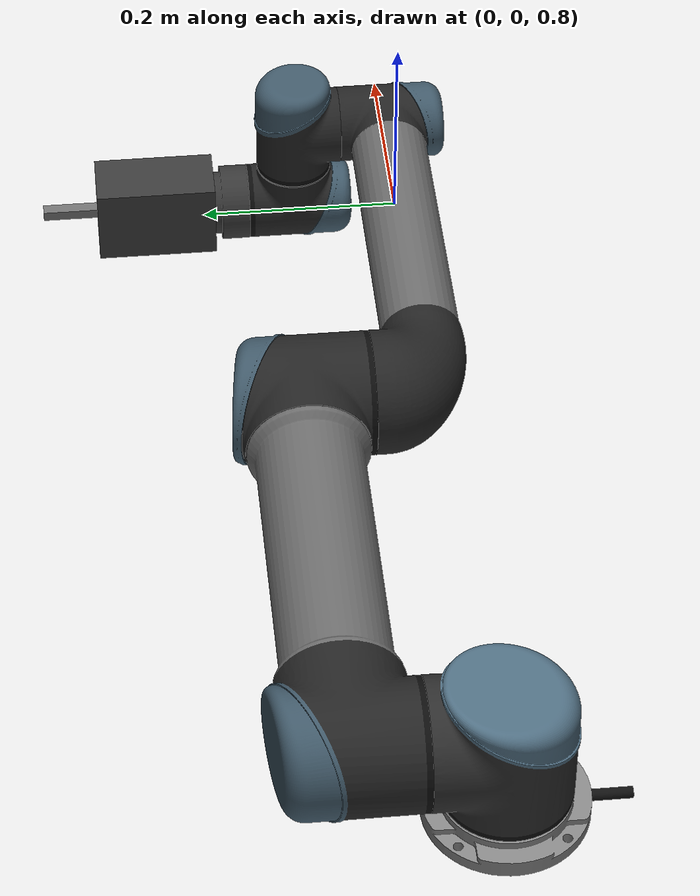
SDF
<sdf version='1.11'>
  <model name='ur5_rg2'>
    <joint name='base_joint' type='fixed'>
      <pose relative_to='__model__'>-0.84999999999999998 0 0.84999999999999998 0 0 0</pose>
      <parent>world</parent>
      <child>base_link</child>
    </joint>
    <link name='base_link'>
      <pose relative_to='base_joint'>0 0 0 0 0 0</pose>
      <inertial>
        <pose>0 0 0 0 0 0</pose>
        <mass>4</mass>
        <inertia>
          <ixx>0.0044333315599999999</ixx>
          <ixy>0</ixy>
          <ixz>0</ixz>
          <iyy>0.0044333315599999999</iyy>
          <iyz>0</iyz>
          <izz>0.0071999999999999998</izz>
        </inertia>
      </inertial>
      <collision name='base_link_inertia_collision'>
        <pose>0 0 0 0 0 -2.4492935982947059e-16</pose>
        <geometry>
          <mesh>
            <scale>1 1 1</scale>
            <uri>model://ur_description/meshes/ur5/collision/base.stl</uri>
          </mesh>
        </geometry>
      </collision>
      <visual name='base_link_inertia_visual'>
        <pose>0 0 0 0 0 -2.4492935982947059e-16</pose>
        <geometry>
          <mesh>
            <scale>1 1 1</scale>
            <uri>model://ur_description/meshes/ur5/visual/base.dae</uri>
          </mesh>
        </geometry>
      </visual>
    </link>
    <joint name='shoulder_pan_joint' type='revolute'>
      <pose relative_to='base_link'>0 0 0.089159000000000002 0 0 3.1415926535897931</pose>
      <parent>base_link</parent>
      <child>shoulder_link</child>
      <axis>
        <xyz>0 0 1</xyz>
        <limit>
          <lower>-6.2831853071795862</lower>
          <upper>6.2831853071795862</upper>
          <effort>150</effort>
          <velocity>3.1415926535897931</velocity>
        </limit>
        <dynamics>
          <damping>0</damping>
          <friction>0</friction>
          <spring_reference>0</spring_reference>
          <spring_stiffness>0</spring_stiffness>
        </dynamics>
      </axis>
    </joint>
    <link name='shoulder_link'>
      <pose relative_to='shoulder_pan_joint'>0 0 0 0 0 0</pose>
      <inertial>
        <pose>0 -0.0019300000000000001 -0.025610000000000001 0 0 0</pose>
        <mass>3.7000000000000002</mass>
        <inertia>
          <ixx>0.01497235833333333</ixx>
          <ixy>0</ixy>
          <ixz>0</ixz>
          <iyy>0.01497235833333333</iyy>
          <iyz>0</iyz>
          <izz>0.010406250000000001</izz>
        </inertia>
      </inertial>
      <collision name='shoulder_link_collision'>
        <pose>0 0 0 0 0 3.1415926535897931</pose>
        <geometry>
          <mesh>
            <scale>1 1 1</scale>
            <uri>model://ur_description/meshes/ur5/collision/shoulder.stl</uri>
          </mesh>
        </geometry>
      </collision>
      <visual name='shoulder_link_visual'>
        <pose>0 0 0 0 0 3.1415926535897931</pose>
        <geometry>
          <mesh>
            <scale>1 1 1</scale>
            <uri>model://ur_description/meshes/ur5/visual/shoulder.dae</uri>
          </mesh>
        </geometry>
      </visual>
    </link>
    <joint name='shoulder_lift_joint' type='revolute'>
      <pose relative_to='shoulder_link'>0 0 0 1.5707963270000003 0 0</pose>
      <parent>shoulder_link</parent>
      <child>upper_arm_link</child>
      <axis>
        <xyz>0 0 1</xyz>
        <initial_position>-1.5707963267948966</initial_position>
        <limit>
          <lower>-6.2831853071795862</lower>
          <upper>6.2831853071795862</upper>
          <effort>150</effort>
          <velocity>3.1415926535897931</velocity>
        </limit>
        <dynamics>
          <damping>0</damping>
          <friction>0</friction>
          <spring_reference>0</spring_reference>
          <spring_stiffness>0</spring_stiffness>
        </dynamics>
      </axis>
    </joint>
    <link name='upper_arm_link'>
      <pose relative_to='shoulder_lift_joint'>0 0 0 0 0 0</pose>
      <inertial>
        <pose>-0.21249999999999999 0 0.11336 0 1.5707963267948966 0</pose>
        <mass>8.3930000000000007</mass>
        <inertia>
          <ixx>0.13388583541666671</ixx>
          <ixy>0</ixy>
          <ixz>0</ixz>
          <iyy>0.13388583541666671</iyy>
          <iyz>0</iyz>
          <izz>0.0151074</izz>
        </inertia>
      </inertial>
      <collision name='upper_arm_link_collision'>
        <pose>0 0 0.13585 1.5707963267948959 5.5511151231257827e-17 -1.5707963267948959</pose>
        <geometry>
          <mesh>
            <scale>1 1 1</scale>
            <uri>model://ur_description/meshes/ur5/collision/upperarm.stl</uri>
          </mesh>
        </geometry>
      </collision>
      <visual name='upper_arm_link_visual'>
        <pose>0 0 0.13585 1.5707963267948959 5.5511151231257827e-17 -1.5707963267948959</pose>
        <geometry>
          <mesh>
            <scale>1 1 1</scale>
            <uri>model://ur_description/meshes/ur5/visual/upperarm.dae</uri>
          </mesh>
        </geometry>
      </visual>
    </link>
    <joint name='elbow_joint' type='revolute'>
      <pose relative_to='upper_arm_link'>-0.42499999999999999 0 0 0 0 0</pose>
      <parent>upper_arm_link</parent>
      <child>forearm_link</child>
      <axis>
        <xyz>0 0 1</xyz>
        <limit>
          <lower>-3.1415926535897931</lower>
          <upper>3.1415926535897931</upper>
          <effort>150</effort>
          <velocity>3.1415926535897931</velocity>
        </limit>
        <dynamics>
          <damping>0</damping>
          <friction>0</friction>
          <spring_reference>0</spring_reference>
          <spring_stiffness>0</spring_stiffness>
        </dynamics>
      </axis>
    </joint>
    <link name='forearm_link'>
      <pose relative_to='elbow_joint'>0 0 0 0 0 0</pose>
      <inertial>
        <pose>-0.24224999999999999 0 0.026499999999999999 0 1.5707963267948966 0</pose>
        <mass>2.3300000000000001</mass>
        <inertia>
          <ixx>0.031216803515624999</ixx>
          <ixy>0</ixy>
          <ixz>0</ixz>
          <iyy>0.031216803515624999</iyy>
          <iyz>0</iyz>
          <izz>0.0040949999999999997</izz>
        </inertia>
      </inertial>
      <collision name='forearm_link_collision'>
        <pose>0 0 0.016500000000000001 1.5707963267948959 5.5511151231257827e-17 -1.5707963267948959</pose>
        <geometry>
          <mesh>
            <scale>1 1 1</scale>
            <uri>model://ur_description/meshes/ur5/collision/forearm.stl</uri>
          </mesh>
        </geometry>
      </collision>
      <visual name='forearm_link_visual'>
        <pose>0 0 0.016500000000000001 1.5707963267948959 5.5511151231257827e-17 -1.5707963267948959</pose>
        <geometry>
          <mesh>
            <scale>1 1 1</scale>
            <uri>model://ur_description/meshes/ur5/visual/forearm.dae</uri>
          </mesh>
        </geometry>
      </visual>
    </link>
    <joint name='wrist_1_joint' type='revolute'>
      <pose relative_to='forearm_link'>-0.39224999999999999 0 0.10915 0 0 0</pose>
      <parent>forearm_link</parent>
      <child>wrist_1_link</child>
      <axis>
        <xyz>0 0 1</xyz>
        <initial_position>-1.5707963267948966</initial_position>
        <limit>
          <lower>-6.2831853071795862</lower>
          <upper>6.2831853071795862</upper>
          <effort>28</effort>
          <velocity>3.1415926535897931</velocity>
        </limit>
        <dynamics>
          <damping>0</damping>
          <friction>0</friction>
          <spring_reference>0</spring_reference>
          <spring_stiffness>0</spring_stiffness>
        </dynamics>
      </axis>
    </joint>
    <link name='wrist_1_link'>
      <pose relative_to='wrist_1_joint'>0 0 0 0 0 0</pose>
      <inertial>
        <pose>0 -0.01634 -0.0018 0 0 0</pose>
        <mass>1.2190000000000001</mass>
        <inertia>
          <ixx>0.0020138895833333331</ixx>
          <ixy>0</ixy>
          <ixz>0</ixz>
          <iyy>0.0020138895833333331</iyy>
          <iyz>0</iyz>
          <izz>0.0021941999999999999</izz>
        </inertia>
      </inertial>
      <collision name='wrist_1_link_collision'>
        <pose>0 0 -0.092999999999999999 1.5707963267948959 0 0</pose>
        <geometry>
          <mesh>
            <scale>1 1 1</scale>
            <uri>model://ur_description/meshes/ur5/collision/wrist1.stl</uri>
          </mesh>
        </geometry>
      </collision>
      <visual name='wrist_1_link_visual'>
        <pose>0 0 -0.092999999999999999 1.5707963267948959 0 0</pose>
        <geometry>
          <mesh>
            <scale>1 1 1</scale>
            <uri>model://ur_description/meshes/ur5/visual/wrist1.dae</uri>
          </mesh>
        </geometry>
      </visual>
    </link>
    <joint name='wrist_2_joint' type='revolute'>
      <pose relative_to='wrist_1_link'>0 -0.094649999999999998 -1.941303950897609e-11 1.5707963270000003 0 0</pose>
      <parent>wrist_1_link</parent>
      <child>wrist_2_link</child>
      <axis>
        <xyz>0 0 1</xyz>
        <limit>
          <lower>-6.2831853071795862</lower>
          <upper>6.2831853071795862</upper>
          <effort>28</effort>
          <velocity>3.1415926535897931</velocity>
        </limit>
        <dynamics>
          <damping>0</damping>
          <friction>0</friction>
          <spring_reference>0</spring_reference>
          <spring_stiffness>0</spring_stiffness>
        </dynamics>
      </axis>
    </joint>
    <link name='wrist_2_link'>
      <pose relative_to='wrist_2_joint'>0 0 0 0 0 0</pose>
      <inertial>
        <pose>0 0.01634 -0.0018 0 0 0</pose>
        <mass>1.2190000000000001</mass>
        <inertia>
          <ixx>0.001831039583333333</ixx>
          <ixy>0</ixy>
          <ixz>0</ixz>
          <iyy>0.001831039583333333</iyy>
          <iyz>0</iyz>
          <izz>0.0021941999999999999</izz>
        </inertia>
      </inertial>
      <collision name='wrist_2_link_collision'>
        <pose>0 0 -0.095000000000000001 0 0 0</pose>
        <geometry>
          <mesh>
            <scale>1 1 1</scale>
            <uri>model://ur_description/meshes/ur5/collision/wrist2.stl</uri>
          </mesh>
        </geometry>
      </collision>
      <visual name='wrist_2_link_visual'>
        <pose>0 0 -0.095000000000000001 0 0 0</pose>
        <geometry>
          <mesh>
            <scale>1 1 1</scale>
            <uri>model://ur_description/meshes/ur5/visual/wrist2.dae</uri>
          </mesh>
        </geometry>
      </visual>
    </link>
    <joint name='wrist_3_joint' type='revolute'>
      <pose relative_to='wrist_2_link'>0 0.082299999999999998 -1.6880012166811751e-11 -1.5707963270000003 1.2246467991473527e-16 -1.224646799147353e-16</pose>
      <parent>wrist_2_link</parent>
      <child>wrist_3_link</child>
      <axis>
        <xyz>0 0 1</xyz>
        <limit>
          <lower>-6.2831853071795862</lower>
          <upper>6.2831853071795862</upper>
          <effort>28</effort>
          <velocity>3.1415926535897931</velocity>
        </limit>
        <dynamics>
          <damping>0</damping>
          <friction>0</friction>
          <spring_reference>0</spring_reference>
          <spring_stiffness>0</spring_stiffness>
        </dynamics>
      </axis>
    </joint>
    <link name='wrist_3_link'>
      <pose relative_to='wrist_3_joint'>0 0 0 0 0 0</pose>
      <inertial>
        <pose>-1.234042663852843e-17 9.6729550606242422e-18 0.043242338930623063 0 0 0</pose>
        <mass>0.67890000000000006</mass>
        <inertia>
          <ixx>0.0010070271348872461</ixx>
          <ixy>1.525729568457283e-35</ixy>
          <ixz>1.744229138490119e-19</ixz>
          <iyy>0.0010070271348872461</iyy>
          <iyz>-1.3672015211670341e-19</iyz>
          <izz>0.00043311718750000002</izz>
        </inertia>
      </inertial>
      <collision name='wrist_3_link_collision'>
        <pose>0 0 -0.081799999999999998 1.5707963267948959 0 0</pose>
        <geometry>
          <mesh>
            <scale>1 1 1</scale>
            <uri>model://ur_description/meshes/ur5/collision/wrist3.stl</uri>
          </mesh>
        </geometry>
      </collision>
      <collision name='wrist_3_link_fixed_joint_lump__rg2_base_link_collision_1'>
        <pose>-1.387778780781446e-17 0 0.059999999999999998 -2.4651903288156619e-32 -2.2204460492503131e-16 2.2204460492503131e-16</pose>
        <geometry>
          <box>
            <size>0.059999999999999998 0.080000000000000002 0.12</size>
          </box>
        </geometry>
      </collision>
      <visual name='wrist_3_link_visual'>
        <pose>0 0 -0.081799999999999998 1.5707963267948959 0 0</pose>
        <geometry>
          <mesh>
            <scale>1 1 1</scale>
            <uri>model://ur_description/meshes/ur5/visual/wrist3.dae</uri>
          </mesh>
        </geometry>
      </visual>
      <visual name='wrist_3_link_fixed_joint_lump__rg2_base_link_visual_1'>
        <pose>-1.387778780781446e-17 0 0.059999999999999998 -2.4651903288156619e-32 -2.2204460492503131e-16 2.2204460492503131e-16</pose>
        <geometry>
          <box>
            <size>0.059999999999999998 0.080000000000000002 0.12</size>
          </box>
        </geometry>
        <material>
          <diffuse>0.225000009 0.225000009 0.225000009 1</diffuse>
          <ambient>0.225000009 0.225000009 0.225000009 1</ambient>
        </material>
      </visual>
    </link>
    <joint name='rg2_finger_joint1' type='prismatic'>
      <pose relative_to='wrist_3_link'>-2.775557561562891e-17 0 0.12 -2.4651903288156619e-32 -2.2204460492503131e-16 2.2204460492503131e-16</pose>
      <parent>wrist_3_link</parent>
      <child>rg2_finger_link1</child>
      <axis>
        <xyz>0 1 0</xyz>
        <limit>
          <lower>0</lower>
          <upper>0.042500000000000003</upper>
          <effort>25</effort>
          <velocity>0.10000000000000001</velocity>
        </limit>
        <dynamics>
          <damping>0.5</damping>
          <friction>0.10000000000000001</friction>
          <spring_reference>0</spring_reference>
          <spring_stiffness>0</spring_stiffness>
        </dynamics>
      </axis>
    </joint>
    <link name='rg2_finger_link1'>
      <pose relative_to='rg2_finger_joint1'>0 0 0 0 0 0</pose>
      <inertial>
        <pose>0 0 0.0275 0 0 0</pose>
        <mass>0.040000000000000001</mass>
        <inertia>
          <ixx>2.0000000000000002e-05</ixx>
          <ixy>0</ixy>
          <ixz>0</ixz>
          <iyy>2.0000000000000002e-05</iyy>
          <iyz>0</iyz>
          <izz>3.9999999999999998e-06</izz>
        </inertia>
      </inertial>
      <collision name='rg2_finger_link1_collision'>
        <pose>0 0 0.0275 0 0 0</pose>
        <geometry>
          <box>
            <size>0.012 0.01 0.055</size>
          </box>
        </geometry>
      </collision>
      <visual name='rg2_finger_link1_visual'>
        <pose>0 0 0.0275 0 0 0</pose>
        <geometry>
          <box>
            <size>0.012 0.01 0.055</size>
          </box>
        </geometry>
        <material>
          <diffuse>0.4375 0.4375 0.4375 1</diffuse>
          <ambient>0.4375 0.4375 0.4375 1</ambient>
        </material>
      </visual>
    </link>
    <joint name='rg2_finger_joint2' type='prismatic'>
      <pose relative_to='wrist_3_link'>-2.775557561562891e-17 0 0.12 -2.4651903288156619e-32 -2.2204460492503131e-16 2.2204460492503131e-16</pose>
      <parent>wrist_3_link</parent>
      <child>rg2_finger_link2</child>
      <axis>
        <xyz>0 -1 0</xyz>
        <limit>
          <lower>0</lower>
          <upper>0.042500000000000003</upper>
          <effort>25</effort>
          <velocity>0.10000000000000001</velocity>
        </limit>
        <dynamics>
          <damping>0.5</damping>
          <friction>0.10000000000000001</friction>
          <spring_reference>0</spring_reference>
          <spring_stiffness>0</spring_stiffness>
        </dynamics>
      </axis>
    </joint>
    <link name='rg2_finger_link2'>
      <pose relative_to='rg2_finger_joint2'>0 0 0 0 0 0</pose>
      <inertial>
        <pose>0 0 0.0275 0 0 0</pose>
        <mass>0.040000000000000001</mass>
        <inertia>
          <ixx>2.0000000000000002e-05</ixx>
          <ixy>0</ixy>
          <ixz>0</ixz>
          <iyy>2.0000000000000002e-05</iyy>
          <iyz>0</iyz>
          <izz>3.9999999999999998e-06</izz>
        </inertia>
      </inertial>
      <collision name='rg2_finger_link2_collision'>
        <pose>0 0 0.0275 0 0 0</pose>
        <geometry>
          <box>
            <size>0.012 0.01 0.055</size>
          </box>
        </geometry>
      </collision>
      <visual name='rg2_finger_link2_visual'>
        <pose>0 0 0.0275 0 0 0</pose>
        <geometry>
          <box>
            <size>0.012 0.01 0.055</size>
          </box>
        </geometry>
        <material>
          <diffuse>0.4375 0.4375 0.4375 1</diffuse>
          <ambient>0.4375 0.4375 0.4375 1</ambient>
        </material>
      </visual>
    </link>

    <!-- Semantic frames exported by the UR5/RG2 description -->
    <frame name='base_link-base_fixed_joint' attached_to='base_link'>
      <pose>0 0 0 0 0 3.1415926535897931</pose>
    </frame>
    <frame name='base' attached_to='base_link-base_fixed_joint'>
      <pose>0 0 0 0 0 0</pose>
    </frame>
    <frame name='base_link-base_link_inertia' attached_to='base_link'>
      <pose>0 0 0 0 0 3.1415926535897931</pose>
    </frame>
    <frame name='base_link_inertia' attached_to='base_link-base_link_inertia'>
      <pose>0 0 0 0 0 0</pose>
    </frame>
    <frame name='wrist_3-flange' attached_to='wrist_3_link'>
      <pose>0 0 0 -1.5707963267948957 -1.5707963267948966 0</pose>
    </frame>
    <frame name='flange' attached_to='wrist_3-flange'>
      <pose>0 0 0 0 0 0</pose>
    </frame>
    <frame name='flange-tool0' attached_to='flange'>
      <pose>0 0 0 1.5707963267948959 -5.5511151231257827e-17 1.5707963267948959</pose>
    </frame>
    <frame name='tool0' attached_to='flange-tool0'>
      <pose>0 0 0 0 0 0</pose>
    </frame>

    <!-- RG2 semantic frames - corrected for current TFM geometry.
         Do not use the historical +0.175 m offset here. -->
    <frame name='rg2_base_link' attached_to='tool0'>
      <pose>0 0 0 0 0 0</pose>
    </frame>
    <frame name='rg2_tcp' attached_to='tool0'>
      <pose>0 0 0.0050885 0 0 0</pose>
    </frame>
    <frame name='rg2_pinch_center' attached_to='tool0'>
      <pose>0 0 0.0050885 0 0 0</pose>
    </frame>

    <frame name='wrist_3_link-ft_frame' attached_to='wrist_3_link'>
      <pose>0 0 0 3.1415926535897931 0 0</pose>
    </frame>
    <frame name='ft_frame' attached_to='wrist_3_link-ft_frame'>
      <pose>0 0 0 0 0 0</pose>
    </frame>

    <plugin filename="gz_ros2_control-system"
            name="gz_ros2_control::GazeboSimROS2ControlPlugin">
      <robot_param>robot_description</robot_param>
      <robot_param_node>robot_state_publisher</robot_param_node>
      <use_sim_time>true</use_sim_time>
      <hold_joints>false</hold_joints>
      <parameters>/home/laboratorio/TFM/agarre_ros2_ws/src/ur5_bringup/config/ur5_mock_controllers.yaml</parameters>
    </plugin>

    <plugin filename="gz-sim-pose-publisher-system"
            name="gz::sim::systems::PosePublisher">
      <publish_pose>true</publish_pose>
      <publish_link_pose>true</publish_link_pose>
      <publish_visual_pose>false</publish_visual_pose>
      <publish_collision_pose>false</publish_collision_pose>
      <static_publisher>false</static_publisher>
    </plugin>
  </model>
</sdf>
